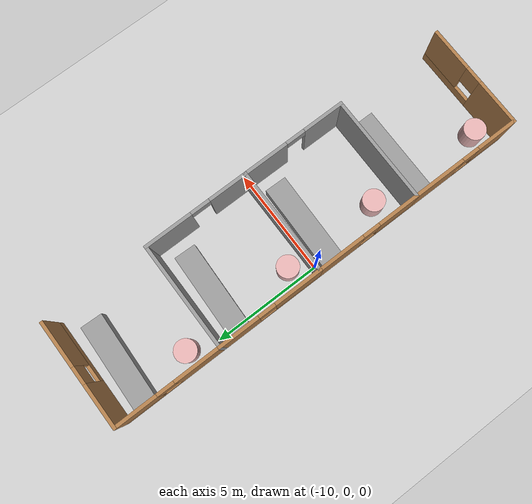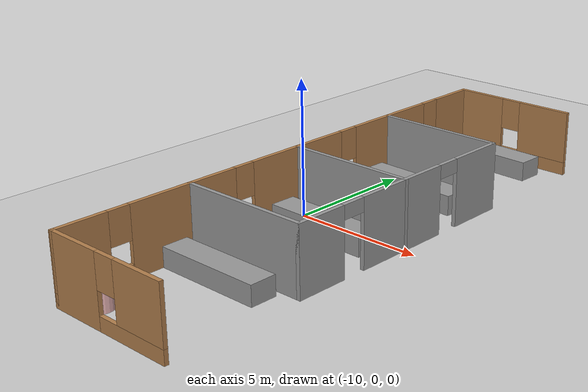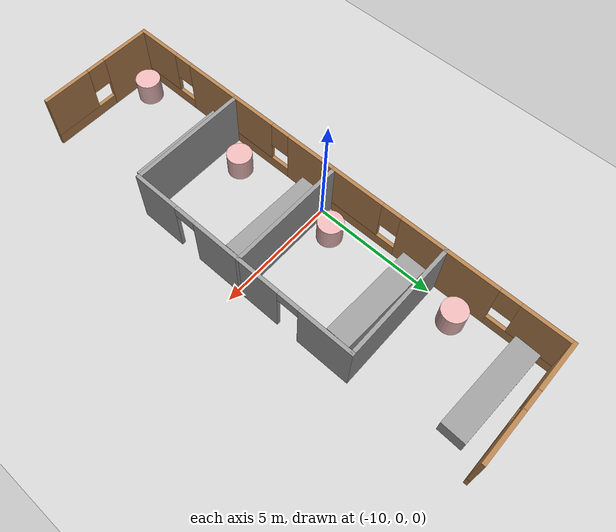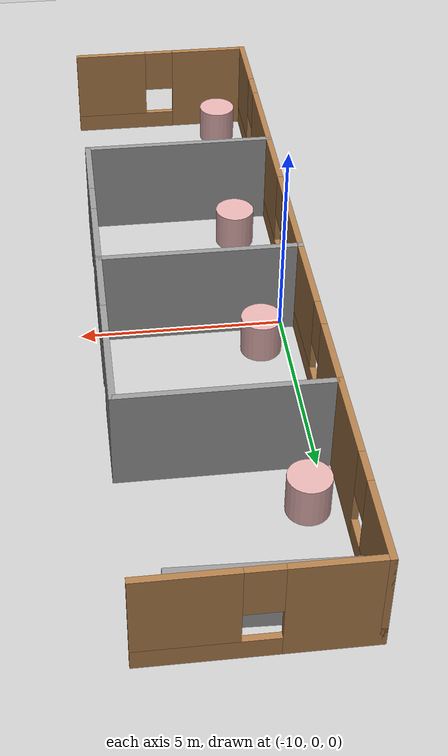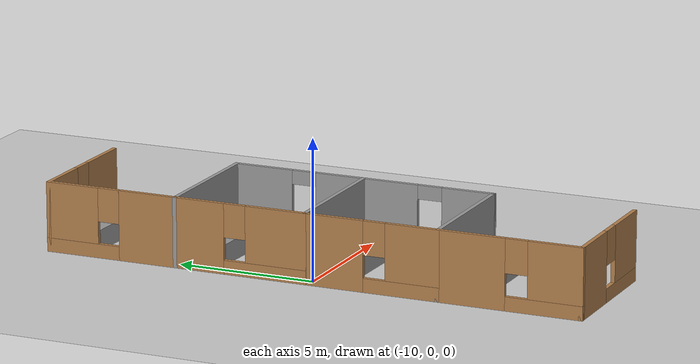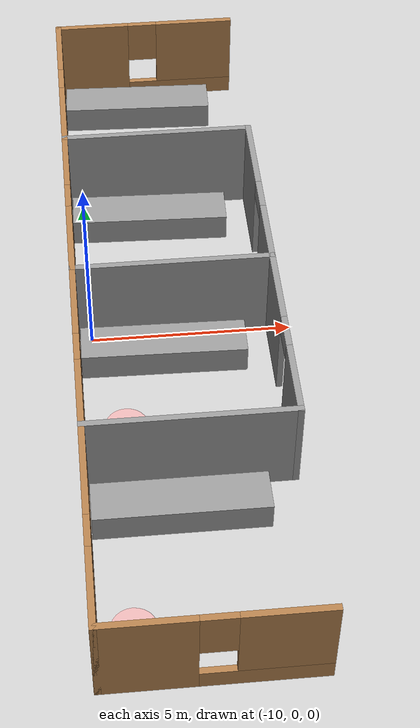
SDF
<sdf version="1.7">
 <world name="default">
  <model name="ground_plane">
   <static>1</static>
   <link name="link">
    <collision name="collision">
     <geometry><plane><normal>0 0 1</normal><size>100 100</size></plane></geometry>
     <surface><friction><ode><mu>100</mu><mu2>50</mu2></ode></friction></surface>
    </collision>
    <visual name="visual">
     <cast_shadows>0</cast_shadows>
     <geometry><plane><normal>0 0 1</normal><size>100 100</size></plane></geometry>
     <material>
      <script><uri>file://media/materials/scripts/gazebo.material</uri><name>Gazebo/Grey</name></script>
     </material>
    </visual>
   </link>
  </model>
  <model name="hospital_floor_v2">
   <link name="Wall_24">
    <pose>-10.375 2.5506 0 0 -0 -1.5708</pose>
    <visual name="Wall_24_Visual_0">
     <pose>-1.53431 0 1.25 0 -0 0</pose>
     <geometry><box><size>1.93138 0.15 2.5</size></box></geometry>
     <material>
      <script><uri>file://media/materials/scripts/gazebo.material</uri><name>Gazebo/Wood</name></script>
      <ambient>1 1 1 1</ambient>
     </material>
     <meta><layer>0</layer></meta>
    </visual>
    <collision name="Wall_24_Collision_0">
     <geometry><box><size>1.93138 0.15 2.5</size></box></geometry>
     <pose>-1.53431 0 1.25 0 -0 0</pose>
    </collision>
    <visual name="Wall_24_Visual_1">
     <pose>0.965692 0 0.25 0 -0 0</pose>
     <geometry><box><size>3.06862 0.15 0.5</size></box></geometry>
     <material>
      <script><uri>file://media/materials/scripts/gazebo.material</uri><name>Gazebo/Wood</name></script>
      <ambient>1 1 1 1</ambient>
     </material>
     <meta><layer>0</layer></meta>
    </visual>
    <collision name="Wall_24_Collision_1">
     <geometry><box><size>3.06862 0.15 0.5</size></box></geometry>
     <pose>0.965692 0 0.25 0 -0 0</pose>
    </collision>
    <visual name="Wall_24_Visual_2">
     <pose>1.36569 0 1.5 0 -0 0</pose>
     <geometry><box><size>2.26862 0.15 2</size></box></geometry>
     <material>
      <script><uri>file://media/materials/scripts/gazebo.material</uri><name>Gazebo/Wood</name></script>
      <ambient>1 1 1 1</ambient>
     </material>
     <meta><layer>0</layer></meta>
    </visual>
    <collision name="Wall_24_Collision_2">
     <geometry><box><size>2.26862 0.15 2</size></box></geometry>
     <pose>1.36569 0 1.5 0 -0 0</pose>
    </collision>
    <visual name="Wall_24_Visual_3">
     <pose>-0.168617 0 1.9 0 -0 0</pose>
     <geometry><box><size>0.8 0.15 1.2</size></box></geometry>
     <material>
      <script><uri>file://media/materials/scripts/gazebo.material</uri><name>Gazebo/Wood</name></script>
      <ambient>1 1 1 1</ambient>
     </material>
     <meta><layer>0</layer></meta>
    </visual>
    <collision name="Wall_24_Collision_3">
     <geometry><box><size>0.8 0.15 1.2</size></box></geometry>
     <pose>-0.168617 0 1.9 0 -0 0</pose>
    </collision>
   </link>
   <link name="Wall_28">
    <collision name="Wall_28_Collision">
     <geometry><box><size>5 0.15 2.5</size></box></geometry>
     <pose>0 0 1.25 0 -0 0</pose>
    </collision>
    <visual name="Wall_28_Visual">
     <pose>0 0 1.25 0 -0 0</pose>
     <geometry><box><size>5 0.15 2.5</size></box></geometry>
     <material>
      <script><uri>file://media/materials/scripts/gazebo.material</uri><name>Gazebo/Grey</name></script>
      <ambient>1 1 1 1</ambient>
     </material>
     <meta><layer>0</layer></meta>
    </visual>
    <pose>-7.95 4.9756 0 0 -0 0</pose>
   </link>
   <link name="Wall_29">
    <pose>-5.525 2.5506 0 0 -0 -1.5708</pose>
    <visual name="Wall_29_Visual_0">
     <pose>-1.3768 0 1.25 0 -0 0</pose>
     <geometry><box><size>2.24639 0.15 2.5</size></box></geometry>
     <material>
      <script><uri>file://media/materials/scripts/gazebo.material</uri><name>Gazebo/Grey</name></script>
      <ambient>1 1 1 1</ambient>
     </material>
     <meta><layer>0</layer></meta>
    </visual>
    <collision name="Wall_29_Collision_0">
     <geometry><box><size>2.24639 0.15 2.5</size></box></geometry>
     <pose>-1.3768 0 1.25 0 -0 0</pose>
    </collision>
    <visual name="Wall_29_Visual_1">
     <pose>1.5732 0 1.25 0 -0 0</pose>
     <geometry><box><size>1.85361 0.15 2.5</size></box></geometry>
     <material>
      <script><uri>file://media/materials/scripts/gazebo.material</uri><name>Gazebo/Grey</name></script>
      <ambient>1 1 1 1</ambient>
     </material>
     <meta><layer>0</layer></meta>
    </visual>
    <collision name="Wall_29_Collision_1">
     <geometry><box><size>1.85361 0.15 2.5</size></box></geometry>
     <pose>1.5732 0 1.25 0 -0 0</pose>
    </collision>
    <visual name="Wall_29_Visual_2">
     <pose>0.196393 0 2.25 0 -0 0</pose>
     <geometry><box><size>0.9 0.15 0.5</size></box></geometry>
     <material>
      <script><uri>file://media/materials/scripts/gazebo.material</uri><name>Gazebo/Grey</name></script>
      <ambient>1 1 1 1</ambient>
     </material>
     <meta><layer>0</layer></meta>
    </visual>
    <collision name="Wall_29_Collision_2">
     <geometry><box><size>0.9 0.15 0.5</size></box></geometry>
     <pose>0.196393 0 2.25 0 -0 0</pose>
    </collision>
   </link>
   <link name="Wall_30">
    <collision name="Wall_30_Collision">
     <geometry><box><size>5 0.15 2.5</size></box></geometry>
     <pose>0 0 1.25 0 -0 0</pose>
    </collision>
    <visual name="Wall_30_Visual">
     <pose>0 0 1.25 0 -0 0</pose>
     <geometry><box><size>5 0.15 2.5</size></box></geometry>
     <material>
      <script><uri>file://media/materials/scripts/gazebo.material</uri><name>Gazebo/Grey</name></script>
      <ambient>1 1 1 1</ambient>
     </material>
     <meta><layer>0</layer></meta>
    </visual>
    <pose>-7.95 0.125599 0 0 -0 3.14159</pose>
   </link>
   <link name="Wall_31">
    <pose>-10.375 -2.2994 0 0 -0 -1.5708</pose>
    <visual name="Wall_31_Visual_0">
     <pose>-1.38396 0 1.25 0 -0 0</pose>
     <geometry><box><size>2.23208 0.15 2.5</size></box></geometry>
     <material>
      <script><uri>file://media/materials/scripts/gazebo.material</uri><name>Gazebo/Wood</name></script>
      <ambient>1 1 1 1</ambient>
     </material>
     <meta><layer>0</layer></meta>
    </visual>
    <collision name="Wall_31_Collision_0">
     <geometry><box><size>2.23208 0.15 2.5</size></box></geometry>
     <pose>-1.38396 0 1.25 0 -0 0</pose>
    </collision>
    <visual name="Wall_31_Visual_1">
     <pose>1.11604 0 0.25 0 -0 0</pose>
     <geometry><box><size>2.76792 0.15 0.5</size></box></geometry>
     <material>
      <script><uri>file://media/materials/scripts/gazebo.material</uri><name>Gazebo/Wood</name></script>
      <ambient>1 1 1 1</ambient>
     </material>
     <meta><layer>0</layer></meta>
    </visual>
    <collision name="Wall_31_Collision_1">
     <geometry><box><size>2.76792 0.15 0.5</size></box></geometry>
     <pose>1.11604 0 0.25 0 -0 0</pose>
    </collision>
    <visual name="Wall_31_Visual_2">
     <pose>1.51604 0 1.5 0 -0 0</pose>
     <geometry><box><size>1.96792 0.15 2</size></box></geometry>
     <material>
      <script><uri>file://media/materials/scripts/gazebo.material</uri><name>Gazebo/Wood</name></script>
      <ambient>1 1 1 1</ambient>
     </material>
     <meta><layer>0</layer></meta>
    </visual>
    <collision name="Wall_31_Collision_2">
     <geometry><box><size>1.96792 0.15 2</size></box></geometry>
     <pose>1.51604 0 1.5 0 -0 0</pose>
    </collision>
    <visual name="Wall_31_Visual_3">
     <pose>0.13208 0 1.9 0 -0 0</pose>
     <geometry><box><size>0.8 0.15 1.2</size></box></geometry>
     <material>
      <script><uri>file://media/materials/scripts/gazebo.material</uri><name>Gazebo/Wood</name></script>
      <ambient>1 1 1 1</ambient>
     </material>
     <meta><layer>0</layer></meta>
    </visual>
    <collision name="Wall_31_Collision_3">
     <geometry><box><size>0.8 0.15 1.2</size></box></geometry>
     <pose>0.13208 0 1.9 0 -0 0</pose>
    </collision>
   </link>
   <link name="Wall_32">
    <collision name="Wall_32_Collision">
     <geometry><box><size>5 0.15 2.5</size></box></geometry>
     <pose>0 0 1.25 0 -0 0</pose>
    </collision>
    <visual name="Wall_32_Visual">
     <pose>0 0 1.25 0 -0 0</pose>
     <geometry><box><size>5 0.15 2.5</size></box></geometry>
     <material>
      <script><uri>file://media/materials/scripts/gazebo.material</uri><name>Gazebo/Grey</name></script>
      <ambient>1 1 1 1</ambient>
     </material>
     <meta><layer>0</layer></meta>
    </visual>
    <pose>-7.95 -4.7244 0 0 -0 0</pose>
   </link>
   <link name="Wall_33">
    <pose>-5.525 -2.2994 0 0 -0 1.5708</pose>
    <visual name="Wall_33_Visual_0">
     <pose>-1.52076 0 1.25 0 -0 0</pose>
     <geometry><box><size>1.95848 0.15 2.5</size></box></geometry>
     <material>
      <script><uri>file://media/materials/scripts/gazebo.material</uri><name>Gazebo/Grey</name></script>
      <ambient>1 1 1 1</ambient>
     </material>
     <meta><layer>0</layer></meta>
    </visual>
    <collision name="Wall_33_Collision_0">
     <geometry><box><size>1.95848 0.15 2.5</size></box></geometry>
     <pose>-1.52076 0 1.25 0 -0 0</pose>
    </collision>
    <visual name="Wall_33_Visual_1">
     <pose>1.42924 0 1.25 0 -0 0</pose>
     <geometry><box><size>2.14152 0.15 2.5</size></box></geometry>
     <material>
      <script><uri>file://media/materials/scripts/gazebo.material</uri><name>Gazebo/Grey</name></script>
      <ambient>1 1 1 1</ambient>
     </material>
     <meta><layer>0</layer></meta>
    </visual>
    <collision name="Wall_33_Collision_1">
     <geometry><box><size>2.14152 0.15 2.5</size></box></geometry>
     <pose>1.42924 0 1.25 0 -0 0</pose>
    </collision>
    <visual name="Wall_33_Visual_2">
     <pose>-0.091523 0 2.25 0 -0 0</pose>
     <geometry><box><size>0.9 0.15 0.5</size></box></geometry>
     <material>
      <script><uri>file://media/materials/scripts/gazebo.material</uri><name>Gazebo/Grey</name></script>
      <ambient>1 1 1 1</ambient>
     </material>
     <meta><layer>0</layer></meta>
    </visual>
    <collision name="Wall_33_Collision_2">
     <geometry><box><size>0.9 0.15 0.5</size></box></geometry>
     <pose>-0.091523 0 2.25 0 -0 0</pose>
    </collision>
   </link>
   <link name="Wall_35">
    <pose>-10.375 -7.2744 0 0 -0 -1.5708</pose>
    <visual name="Wall_35_Visual_0">
     <pose>-1.37889 0 1.25 0 -0 0</pose>
     <geometry><box><size>2.49222 0.15 2.5</size></box></geometry>
     <material>
      <script><uri>file://media/materials/scripts/gazebo.material</uri><name>Gazebo/Wood</name></script>
      <ambient>1 1 1 1</ambient>
     </material>
     <meta><layer>0</layer></meta>
    </visual>
    <collision name="Wall_35_Collision_0">
     <geometry><box><size>2.49222 0.15 2.5</size></box></geometry>
     <pose>-1.37889 0 1.25 0 -0 0</pose>
    </collision>
    <visual name="Wall_35_Visual_1">
     <pose>1.24611 0 0.25 0 -0 0</pose>
     <geometry><box><size>2.75778 0.15 0.5</size></box></geometry>
     <material>
      <script><uri>file://media/materials/scripts/gazebo.material</uri><name>Gazebo/Wood</name></script>
      <ambient>1 1 1 1</ambient>
     </material>
     <meta><layer>0</layer></meta>
    </visual>
    <collision name="Wall_35_Collision_1">
     <geometry><box><size>2.75778 0.15 0.5</size></box></geometry>
     <pose>1.24611 0 0.25 0 -0 0</pose>
    </collision>
    <visual name="Wall_35_Visual_2">
     <pose>1.64611 0 1.5 0 -0 0</pose>
     <geometry><box><size>1.95778 0.15 2</size></box></geometry>
     <material>
      <script><uri>file://media/materials/scripts/gazebo.material</uri><name>Gazebo/Wood</name></script>
      <ambient>1 1 1 1</ambient>
     </material>
     <meta><layer>0</layer></meta>
    </visual>
    <collision name="Wall_35_Collision_2">
     <geometry><box><size>1.95778 0.15 2</size></box></geometry>
     <pose>1.64611 0 1.5 0 -0 0</pose>
    </collision>
    <visual name="Wall_35_Visual_3">
     <pose>0.26722 0 1.9 0 -0 0</pose>
     <geometry><box><size>0.8 0.15 1.2</size></box></geometry>
     <material>
      <script><uri>file://media/materials/scripts/gazebo.material</uri><name>Gazebo/Wood</name></script>
      <ambient>1 1 1 1</ambient>
     </material>
     <meta><layer>0</layer></meta>
    </visual>
    <collision name="Wall_35_Collision_3">
     <geometry><box><size>0.8 0.15 1.2</size></box></geometry>
     <pose>0.26722 0 1.9 0 -0 0</pose>
    </collision>
   </link>
   <link name="Wall_36">
    <pose>-7.95 -9.8244 0 0 -0 0</pose>
    <visual name="Wall_36_Visual_0">
     <pose>-1.41383 0 1.25 0 -0 0</pose>
     <geometry><box><size>2.17234 0.15 2.5</size></box></geometry>
     <material>
      <script><uri>file://media/materials/scripts/gazebo.material</uri><name>Gazebo/Wood</name></script>
      <ambient>1 1 1 1</ambient>
     </material>
     <meta><layer>0</layer></meta>
    </visual>
    <collision name="Wall_36_Collision_0">
     <geometry><box><size>2.17234 0.15 2.5</size></box></geometry>
     <pose>-1.41383 0 1.25 0 -0 0</pose>
    </collision>
    <visual name="Wall_36_Visual_1">
     <pose>1.08617 0 0.25 0 -0 0</pose>
     <geometry><box><size>2.82766 0.15 0.5</size></box></geometry>
     <material>
      <script><uri>file://media/materials/scripts/gazebo.material</uri><name>Gazebo/Wood</name></script>
      <ambient>1 1 1 1</ambient>
     </material>
     <meta><layer>0</layer></meta>
    </visual>
    <collision name="Wall_36_Collision_1">
     <geometry><box><size>2.82766 0.15 0.5</size></box></geometry>
     <pose>1.08617 0 0.25 0 -0 0</pose>
    </collision>
    <visual name="Wall_36_Visual_2">
     <pose>1.48617 0 1.5 0 -0 0</pose>
     <geometry><box><size>2.02766 0.15 2</size></box></geometry>
     <material>
      <script><uri>file://media/materials/scripts/gazebo.material</uri><name>Gazebo/Wood</name></script>
      <ambient>1 1 1 1</ambient>
     </material>
     <meta><layer>0</layer></meta>
    </visual>
    <collision name="Wall_36_Collision_2">
     <geometry><box><size>2.02766 0.15 2</size></box></geometry>
     <pose>1.48617 0 1.5 0 -0 0</pose>
    </collision>
    <visual name="Wall_36_Visual_3">
     <pose>0.072339 0 1.9 0 -0 0</pose>
     <geometry><box><size>0.8 0.15 1.2</size></box></geometry>
     <material>
      <script><uri>file://media/materials/scripts/gazebo.material</uri><name>Gazebo/Wood</name></script>
      <ambient>1 1 1 1</ambient>
     </material>
     <meta><layer>0</layer></meta>
    </visual>
    <collision name="Wall_36_Collision_3">
     <geometry><box><size>0.8 0.15 1.2</size></box></geometry>
     <pose>0.072339 0 1.9 0 -0 0</pose>
    </collision>
   </link>
   <link name="Wall_39">
    <pose>-10.375 7.4006 0 0 -0 1.5708</pose>
    <visual name="Wall_39_Visual_0">
     <pose>-1.39785 0 1.25 0 -0 0</pose>
     <geometry><box><size>2.2043 0.15 2.5</size></box></geometry>
     <material>
      <script><uri>file://media/materials/scripts/gazebo.material</uri><name>Gazebo/Wood</name></script>
      <ambient>1 1 1 1</ambient>
     </material>
     <meta><layer>0</layer></meta>
    </visual>
    <collision name="Wall_39_Collision_0">
     <geometry><box><size>2.2043 0.15 2.5</size></box></geometry>
     <pose>-1.39785 0 1.25 0 -0 0</pose>
    </collision>
    <visual name="Wall_39_Visual_1">
     <pose>1.10215 0 0.25 0 -0 0</pose>
     <geometry><box><size>2.7957 0.15 0.5</size></box></geometry>
     <material>
      <script><uri>file://media/materials/scripts/gazebo.material</uri><name>Gazebo/Wood</name></script>
      <ambient>1 1 1 1</ambient>
     </material>
     <meta><layer>0</layer></meta>
    </visual>
    <collision name="Wall_39_Collision_1">
     <geometry><box><size>2.7957 0.15 0.5</size></box></geometry>
     <pose>1.10215 0 0.25 0 -0 0</pose>
    </collision>
    <visual name="Wall_39_Visual_2">
     <pose>1.50215 0 1.5 0 -0 0</pose>
     <geometry><box><size>1.9957 0.15 2</size></box></geometry>
     <material>
      <script><uri>file://media/materials/scripts/gazebo.material</uri><name>Gazebo/Wood</name></script>
      <ambient>1 1 1 1</ambient>
     </material>
     <meta><layer>0</layer></meta>
    </visual>
    <collision name="Wall_39_Collision_2">
     <geometry><box><size>1.9957 0.15 2</size></box></geometry>
     <pose>1.50215 0 1.5 0 -0 0</pose>
    </collision>
    <visual name="Wall_39_Visual_3">
     <pose>0.104303 0 1.9 0 -0 0</pose>
     <geometry><box><size>0.8 0.15 1.2</size></box></geometry>
     <material>
      <script><uri>file://media/materials/scripts/gazebo.material</uri><name>Gazebo/Wood</name></script>
      <ambient>1 1 1 1</ambient>
     </material>
     <meta><layer>0</layer></meta>
    </visual>
    <collision name="Wall_39_Collision_3">
     <geometry><box><size>0.8 0.15 1.2</size></box></geometry>
     <pose>0.104303 0 1.9 0 -0 0</pose>
    </collision>
   </link>
   <link name="Wall_40">
    <pose>-7.95 9.8256 0 0 -0 0</pose>
    <visual name="Wall_40_Visual_0">
     <pose>-1.47467 0 1.25 0 -0 0</pose>
     <geometry><box><size>2.05067 0.15 2.5</size></box></geometry>
     <material>
      <script><uri>file://media/materials/scripts/gazebo.material</uri><name>Gazebo/Wood</name></script>
      <ambient>1 1 1 1</ambient>
     </material>
     <meta><layer>0</layer></meta>
    </visual>
    <collision name="Wall_40_Collision_0">
     <geometry><box><size>2.05067 0.15 2.5</size></box></geometry>
     <pose>-1.47467 0 1.25 0 -0 0</pose>
    </collision>
    <visual name="Wall_40_Visual_1">
     <pose>1.02533 0 0.25 0 -0 0</pose>
     <geometry><box><size>2.94933 0.15 0.5</size></box></geometry>
     <material>
      <script><uri>file://media/materials/scripts/gazebo.material</uri><name>Gazebo/Wood</name></script>
      <ambient>1 1 1 1</ambient>
     </material>
     <meta><layer>0</layer></meta>
    </visual>
    <collision name="Wall_40_Collision_1">
     <geometry><box><size>2.94933 0.15 0.5</size></box></geometry>
     <pose>1.02533 0 0.25 0 -0 0</pose>
    </collision>
    <visual name="Wall_40_Visual_2">
     <pose>1.42533 0 1.5 0 -0 0</pose>
     <geometry><box><size>2.14933 0.15 2</size></box></geometry>
     <material>
      <script><uri>file://media/materials/scripts/gazebo.material</uri><name>Gazebo/Wood</name></script>
      <ambient>1 1 1 1</ambient>
     </material>
     <meta><layer>0</layer></meta>
    </visual>
    <collision name="Wall_40_Collision_2">
     <geometry><box><size>2.14933 0.15 2</size></box></geometry>
     <pose>1.42533 0 1.5 0 -0 0</pose>
    </collision>
    <visual name="Wall_40_Visual_3">
     <pose>-0.049332 0 1.9 0 -0 0</pose>
     <geometry><box><size>0.8 0.15 1.2</size></box></geometry>
     <material>
      <script><uri>file://media/materials/scripts/gazebo.material</uri><name>Gazebo/Wood</name></script>
      <ambient>1 1 1 1</ambient>
     </material>
     <meta><layer>0</layer></meta>
    </visual>
    <collision name="Wall_40_Collision_3">
     <geometry><box><size>0.8 0.15 1.2</size></box></geometry>
     <pose>-0.049332 0 1.9 0 -0 0</pose>
    </collision>
   </link>
   <static>1</static>
  </model>
  <model name="stool_4">
   <link name="link">
    <inertial>
     <mass>1</mass>
     <inertia><ixx>0.145833</ixx><ixy>0</ixy><ixz>0</ixz><iyy>0.145833</iyy><iyz>0</iyz><izz>0.125</izz></inertia>
    </inertial>
    <visual name="visual">
     <geometry><cylinder><radius>0.5</radius><length>1</length></cylinder></geometry>
     <material>
      <script><name>Gazebo/Grey</name><uri>file://media/materials/scripts/gazebo.material</uri></script>
      <shader type="pixel"><normal_map>__default__</normal_map></shader>
      <ambient>0.9 0.7 0.7 0</ambient>
      <diffuse>0.7 0.7 0.7 1</diffuse>
      <specular>0.01 0.01 0.01 1</specular>
      <emissive>0 0 0 1</emissive>
     </material>
    </visual>
    <collision name="collision">
     <geometry><cylinder><radius>0.5</radius><length>1</length></cylinder></geometry>
     <surface>
      <friction>
       <ode><mu>1</mu><mu2>1</mu2><fdir1>0 0 0</fdir1><slip1>0</slip1><slip2>0</slip2></ode>
       <torsional>
        <coefficient>1</coefficient>
        <patch_radius>0</patch_radius>
        <surface_radius>0</surface_radius>
        <use_patch_radius>1</use_patch_radius>
        <ode><slip>0</slip></ode>
       </torsional>
      </friction>
      <bounce><restitution_coefficient>0</restitution_coefficient><threshold>1e+06</threshold></bounce>
      <contact>
       <collide_without_contact>0</collide_without_contact>
       <collide_without_contact_bitmask>1</collide_without_contact_bitmask>
       <collide_bitmask>1</collide_bitmask>
       <ode>
        <soft_cfm>0</soft_cfm>
        <soft_erp>0.2</soft_erp>
        <kp>1e+13</kp>
        <kd>1</kd>
        <max_vel>0.01</max_vel>
        <min_depth>0</min_depth>
       </ode>
       <bullet>
        <split_impulse>1</split_impulse>
        <split_impulse_penetration_threshold>-0.01</split_impulse_penetration_threshold>
        <soft_cfm>0</soft_cfm>
        <soft_erp>0.2</soft_erp>
        <kp>1e+13</kp>
        <kd>1</kd>
       </bullet>
      </contact>
     </surface>
    </collision>
   </link>
   <static>0</static>
   <pose>-9.56305 6.25966 0.499993 -3e-06 -2e-06 0</pose>
  </model>
  <model name="bed_4">
   <link name="link">
    <inertial>
     <mass>1</mass>
     <inertia>
      <ixx>0.166667</ixx>
      <ixy>0</ixy>
      <ixz>0</ixz>
      <iyy>0.166667</iyy>
      <iyz>0</iyz>
      <izz>0.166667</izz>
     </inertia>
    </inertial>
    <visual name="visual">
     <geometry><box><size>4.06412 1 0.738497</size></box></geometry>
     <material>
      <script><name>Gazebo/Grey</name><uri>file://media/materials/scripts/gazebo.material</uri></script>
      <shader type="pixel"><normal_map>__default__</normal_map></shader>
      <ambient>0.9 0.9 0.9 1</ambient>
      <diffuse>0.95 0.95 0.95 1</diffuse>
      <specular>0.05 0.05 0.05 1</specular>
      <emissive>0 0 0 1</emissive>
     </material>
    </visual>
    <collision name="collision">
     <geometry><box><size>4.06412 1 0.738497</size></box></geometry>
     <surface>
      <friction>
       <ode><mu>1</mu><mu2>1</mu2><fdir1>0 0 0</fdir1><slip1>0</slip1><slip2>0</slip2></ode>
       <torsional>
        <coefficient>1</coefficient>
        <patch_radius>0</patch_radius>
        <surface_radius>0</surface_radius>
        <use_patch_radius>1</use_patch_radius>
        <ode><slip>0</slip></ode>
       </torsional>
      </friction>
      <bounce><restitution_coefficient>0</restitution_coefficient><threshold>1e+06</threshold></bounce>
      <contact>
       <collide_without_contact>0</collide_without_contact>
       <collide_without_contact_bitmask>1</collide_without_contact_bitmask>
       <collide_bitmask>1</collide_bitmask>
       <ode>
        <soft_cfm>0</soft_cfm>
        <soft_erp>0.2</soft_erp>
        <kp>1e+13</kp>
        <kd>1</kd>
        <max_vel>0.01</max_vel>
        <min_depth>0</min_depth>
       </ode>
       <bullet>
        <split_impulse>1</split_impulse>
        <split_impulse_penetration_threshold>-0.01</split_impulse_penetration_threshold>
        <soft_cfm>0</soft_cfm>
        <soft_erp>0.2</soft_erp>
        <kp>1e+13</kp>
        <kd>1</kd>
       </bullet>
      </contact>
     </surface>
    </collision>
   </link>
   <static>0</static>
   <pose>-8.24893 8.71203 0.369249 -1e-06 -0 -0.034763</pose>
  </model>
  <model name="stool_4_0">
   <link name="link">
    <inertial>
     <mass>1</mass>
     <inertia><ixx>0.145833</ixx><ixy>0</ixy><ixz>0</ixz><iyy>0.145833</iyy><iyz>0</iyz><izz>0.125</izz></inertia>
    </inertial>
    <visual name="visual">
     <geometry><cylinder><radius>0.5</radius><length>1</length></cylinder></geometry>
     <material>
      <script><name>Gazebo/Grey</name><uri>file://media/materials/scripts/gazebo.material</uri></script>
      <shader type="pixel"><normal_map>__default__</normal_map></shader>
      <ambient>0.9 0.7 0.7 0</ambient>
      <diffuse>0.7 0.7 0.7 1</diffuse>
      <specular>0.01 0.01 0.01 1</specular>
      <emissive>0 0 0 1</emissive>
     </material>
    </visual>
    <collision name="collision">
     <geometry><cylinder><radius>0.5</radius><length>1</length></cylinder></geometry>
     <surface>
      <friction>
       <ode><mu>1</mu><mu2>1</mu2><fdir1>0 0 0</fdir1><slip1>0</slip1><slip2>0</slip2></ode>
       <torsional>
        <coefficient>1</coefficient>
        <patch_radius>0</patch_radius>
        <surface_radius>0</surface_radius>
        <use_patch_radius>1</use_patch_radius>
        <ode><slip>0</slip></ode>
       </torsional>
      </friction>
      <bounce><restitution_coefficient>0</restitution_coefficient><threshold>1e+06</threshold></bounce>
      <contact>
       <collide_without_contact>0</collide_without_contact>
       <collide_without_contact_bitmask>1</collide_without_contact_bitmask>
       <collide_bitmask>1</collide_bitmask>
       <ode>
        <soft_cfm>0</soft_cfm>
        <soft_erp>0.2</soft_erp>
        <kp>1e+13</kp>
        <kd>1</kd>
        <max_vel>0.01</max_vel>
        <min_depth>0</min_depth>
       </ode>
       <bullet>
        <split_impulse>1</split_impulse>
        <split_impulse_penetration_threshold>-0.01</split_impulse_penetration_threshold>
        <soft_cfm>0</soft_cfm>
        <soft_erp>0.2</soft_erp>
        <kp>1e+13</kp>
        <kd>1</kd>
       </bullet>
      </contact>
     </surface>
    </collision>
   </link>
   <static>0</static>
   <pose>-9.36419 0.924122 0.499998 -3e-06 -1e-06 -2e-06</pose>
  </model>
  <model name="stool_2">
   <link name="link">
    <inertial>
     <mass>1</mass>
     <inertia><ixx>0.145833</ixx><ixy>0</ixy><ixz>0</ixz><iyy>0.145833</iyy><iyz>0</iyz><izz>0.125</izz></inertia>
    </inertial>
    <visual name="visual">
     <geometry><cylinder><radius>0.5</radius><length>1</length></cylinder></geometry>
     <material>
      <script><name>Gazebo/Grey</name><uri>file://media/materials/scripts/gazebo.material</uri></script>
      <shader type="pixel"><normal_map>__default__</normal_map></shader>
      <ambient>0.9 0.7 0.7 0</ambient>
      <diffuse>0.7 0.7 0.7 1</diffuse>
      <specular>0.01 0.01 0.01 1</specular>
      <emissive>0 0 0 1</emissive>
     </material>
    </visual>
    <collision name="collision">
     <geometry><cylinder><radius>0.5</radius><length>1</length></cylinder></geometry>
     <surface>
      <friction>
       <ode><mu>1</mu><mu2>1</mu2><fdir1>0 0 0</fdir1><slip1>0</slip1><slip2>0</slip2></ode>
       <torsional>
        <coefficient>1</coefficient>
        <patch_radius>0</patch_radius>
        <surface_radius>0</surface_radius>
        <use_patch_radius>1</use_patch_radius>
        <ode><slip>0</slip></ode>
       </torsional>
      </friction>
      <bounce><restitution_coefficient>0</restitution_coefficient><threshold>1e+06</threshold></bounce>
      <contact>
       <collide_without_contact>0</collide_without_contact>
       <collide_without_contact_bitmask>1</collide_without_contact_bitmask>
       <collide_bitmask>1</collide_bitmask>
       <ode>
        <soft_cfm>0</soft_cfm>
        <soft_erp>0.2</soft_erp>
        <kp>1e+13</kp>
        <kd>1</kd>
        <max_vel>0.01</max_vel>
        <min_depth>0</min_depth>
       </ode>
       <bullet>
        <split_impulse>1</split_impulse>
        <split_impulse_penetration_threshold>-0.01</split_impulse_penetration_threshold>
        <soft_cfm>0</soft_cfm>
        <soft_erp>0.2</soft_erp>
        <kp>1e+13</kp>
        <kd>1</kd>
       </bullet>
      </contact>
     </surface>
    </collision>
   </link>
   <static>0</static>
   <pose>-9.3381 -3.63624 0.499992 -3e-06 -2e-06 0</pose>
  </model>
  <model name="stool_2_clone">
   <link name="link">
    <inertial>
     <mass>1</mass>
     <inertia><ixx>0.145833</ixx><ixy>0</ixy><ixz>0</ixz><iyy>0.145833</iyy><iyz>0</iyz><izz>0.125</izz></inertia>
    </inertial>
    <visual name="visual">
     <geometry><cylinder><radius>0.5</radius><length>1</length></cylinder></geometry>
     <material>
      <script><name>Gazebo/Grey</name><uri>file://media/materials/scripts/gazebo.material</uri></script>
      <shader type="pixel"><normal_map>__default__</normal_map></shader>
      <ambient>0.9 0.7 0.7 0</ambient>
      <diffuse>0.7 0.7 0.7 1</diffuse>
      <specular>0.01 0.01 0.01 1</specular>
      <emissive>0 0 0 1</emissive>
     </material>
    </visual>
    <collision name="collision">
     <geometry><cylinder><radius>0.5</radius><length>1</length></cylinder></geometry>
     <surface>
      <friction>
       <ode><mu>1</mu><mu2>1</mu2><fdir1>0 0 0</fdir1><slip1>0</slip1><slip2>0</slip2></ode>
       <torsional>
        <coefficient>1</coefficient>
        <patch_radius>0</patch_radius>
        <surface_radius>0</surface_radius>
        <use_patch_radius>1</use_patch_radius>
        <ode><slip>0</slip></ode>
       </torsional>
      </friction>
      <bounce><restitution_coefficient>0</restitution_coefficient><threshold>1e+06</threshold></bounce>
      <contact>
       <collide_without_contact>0</collide_without_contact>
       <collide_without_contact_bitmask>1</collide_without_contact_bitmask>
       <collide_bitmask>1</collide_bitmask>
       <ode>
        <soft_cfm>0</soft_cfm>
        <soft_erp>0.2</soft_erp>
        <kp>1e+13</kp>
        <kd>1</kd>
        <max_vel>0.01</max_vel>
        <min_depth>0</min_depth>
       </ode>
       <bullet>
        <split_impulse>1</split_impulse>
        <split_impulse_penetration_threshold>-0.01</split_impulse_penetration_threshold>
        <soft_cfm>0</soft_cfm>
        <soft_erp>0.2</soft_erp>
        <kp>1e+13</kp>
        <kd>1</kd>
       </bullet>
      </contact>
     </surface>
    </collision>
   </link>
   <static>0</static>
   <pose>-9.53873 -9.01982 0.499992 3e-06 1e-06 -2e-06</pose>
  </model>
  <model name="bed_3">
   <link name="link">
    <inertial>
     <mass>1</mass>
     <inertia>
      <ixx>0.166667</ixx>
      <ixy>0</ixy>
      <ixz>0</ixz>
      <iyy>0.166667</iyy>
      <iyz>0</iyz>
      <izz>0.166667</izz>
     </inertia>
    </inertial>
    <visual name="visual">
     <geometry><box><size>4.06412 1 0.738497</size></box></geometry>
     <material>
      <script><name>Gazebo/Grey</name><uri>file://media/materials/scripts/gazebo.material</uri></script>
      <shader type="pixel"><normal_map>__default__</normal_map></shader>
      <ambient>0.9 0.9 0.9 1</ambient>
      <diffuse>0.95 0.95 0.95 1</diffuse>
      <specular>0.05 0.05 0.05 1</specular>
      <emissive>0 0 0 1</emissive>
     </material>
    </visual>
    <collision name="collision">
     <geometry><box><size>4.06412 1 0.738497</size></box></geometry>
     <surface>
      <friction>
       <ode><mu>1</mu><mu2>1</mu2><fdir1>0 0 0</fdir1><slip1>0</slip1><slip2>0</slip2></ode>
       <torsional>
        <coefficient>1</coefficient>
        <patch_radius>0</patch_radius>
        <surface_radius>0</surface_radius>
        <use_patch_radius>1</use_patch_radius>
        <ode><slip>0</slip></ode>
       </torsional>
      </friction>
      <bounce><restitution_coefficient>0</restitution_coefficient><threshold>1e+06</threshold></bounce>
      <contact>
       <collide_without_contact>0</collide_without_contact>
       <collide_without_contact_bitmask>1</collide_without_contact_bitmask>
       <collide_bitmask>1</collide_bitmask>
       <ode>
        <soft_cfm>0</soft_cfm>
        <soft_erp>0.2</soft_erp>
        <kp>1e+13</kp>
        <kd>1</kd>
        <max_vel>0.01</max_vel>
        <min_depth>0</min_depth>
       </ode>
       <bullet>
        <split_impulse>1</split_impulse>
        <split_impulse_penetration_threshold>-0.01</split_impulse_penetration_threshold>
        <soft_cfm>0</soft_cfm>
        <soft_erp>0.2</soft_erp>
        <kp>1e+13</kp>
        <kd>1</kd>
       </bullet>
      </contact>
     </surface>
    </collision>
   </link>
   <static>0</static>
   <pose>-8.25125 4.00061 0.369249 -1e-06 -0 -0.032068</pose>
  </model>
  <model name="bed_2">
   <link name="link">
    <inertial>
     <mass>1</mass>
     <inertia>
      <ixx>0.166667</ixx>
      <ixy>0</ixy>
      <ixz>0</ixz>
      <iyy>0.166667</iyy>
      <iyz>0</iyz>
      <izz>0.166667</izz>
     </inertia>
    </inertial>
    <visual name="visual">
     <geometry><box><size>4.06412 1 0.738497</size></box></geometry>
     <material>
      <script><name>Gazebo/Grey</name><uri>file://media/materials/scripts/gazebo.material</uri></script>
      <shader type="pixel"><normal_map>__default__</normal_map></shader>
      <ambient>0.9 0.9 0.9 0</ambient>
      <diffuse>0.95 0.95 0.95 1</diffuse>
      <specular>0.05 0.05 0.05 1</specular>
      <emissive>0 0 0 1</emissive>
     </material>
    </visual>
    <collision name="collision">
     <geometry><box><size>4.06412 1 0.738497</size></box></geometry>
     <surface>
      <friction>
       <ode><mu>1</mu><mu2>1</mu2><fdir1>0 0 0</fdir1><slip1>0</slip1><slip2>0</slip2></ode>
       <torsional>
        <coefficient>1</coefficient>
        <patch_radius>0</patch_radius>
        <surface_radius>0</surface_radius>
        <use_patch_radius>1</use_patch_radius>
        <ode><slip>0</slip></ode>
       </torsional>
      </friction>
      <bounce><restitution_coefficient>0</restitution_coefficient><threshold>1e+06</threshold></bounce>
      <contact>
       <collide_without_contact>0</collide_without_contact>
       <collide_without_contact_bitmask>1</collide_without_contact_bitmask>
       <collide_bitmask>1</collide_bitmask>
       <ode>
        <soft_cfm>0</soft_cfm>
        <soft_erp>0.2</soft_erp>
        <kp>1e+13</kp>
        <kd>1</kd>
        <max_vel>0.01</max_vel>
        <min_depth>0</min_depth>
       </ode>
       <bullet>
        <split_impulse>1</split_impulse>
        <split_impulse_penetration_threshold>-0.01</split_impulse_penetration_threshold>
        <soft_cfm>0</soft_cfm>
        <soft_erp>0.2</soft_erp>
        <kp>1e+13</kp>
        <kd>1</kd>
       </bullet>
      </contact>
     </surface>
    </collision>
   </link>
   <static>0</static>
   <pose>-8.25319 -0.776205 0.369243 5e-06 -2e-06 -0.018961</pose>
  </model>
  <model name="bed_1">
   <link name="link">
    <inertial>
     <mass>1</mass>
     <inertia>
      <ixx>0.166667</ixx>
      <ixy>0</ixy>
      <ixz>0</ixz>
      <iyy>0.166667</iyy>
      <iyz>0</iyz>
      <izz>0.166667</izz>
     </inertia>
    </inertial>
    <visual name="visual">
     <geometry><box><size>4.06412 1 0.738497</size></box></geometry>
     <material>
      <script><name>Gazebo/Grey</name><uri>file://media/materials/scripts/gazebo.material</uri></script>
      <shader type="pixel"><normal_map>__default__</normal_map></shader>
      <ambient>0.9 0.9 0.9 0</ambient>
      <diffuse>0.95 0.95 0.95 1</diffuse>
      <specular>0.05 0.05 0.05 1</specular>
      <emissive>0 0 0 1</emissive>
     </material>
    </visual>
    <collision name="collision">
     <geometry><box><size>4.06412 1 0.738497</size></box></geometry>
     <surface>
      <friction>
       <ode><mu>1</mu><mu2>1</mu2><fdir1>0 0 0</fdir1><slip1>0</slip1><slip2>0</slip2></ode>
       <torsional>
        <coefficient>1</coefficient>
        <patch_radius>0</patch_radius>
        <surface_radius>0</surface_radius>
        <use_patch_radius>1</use_patch_radius>
        <ode><slip>0</slip></ode>
       </torsional>
      </friction>
      <bounce><restitution_coefficient>0</restitution_coefficient><threshold>1e+06</threshold></bounce>
      <contact>
       <collide_without_contact>0</collide_without_contact>
       <collide_without_contact_bitmask>1</collide_without_contact_bitmask>
       <collide_bitmask>1</collide_bitmask>
       <ode>
        <soft_cfm>0</soft_cfm>
        <soft_erp>0.2</soft_erp>
        <kp>1e+13</kp>
        <kd>1</kd>
        <max_vel>0.01</max_vel>
        <min_depth>0</min_depth>
       </ode>
       <bullet>
        <split_impulse>1</split_impulse>
        <split_impulse_penetration_threshold>-0.01</split_impulse_penetration_threshold>
        <soft_cfm>0</soft_cfm>
        <soft_erp>0.2</soft_erp>
        <kp>1e+13</kp>
        <kd>1</kd>
       </bullet>
      </contact>
     </surface>
    </collision>
   </link>
   <static>0</static>
   <pose>-8.25164 -5.54332 0.369245 -4e-06 -1e-06 -0.001814</pose>
  </model>
 </world>
</sdf>
